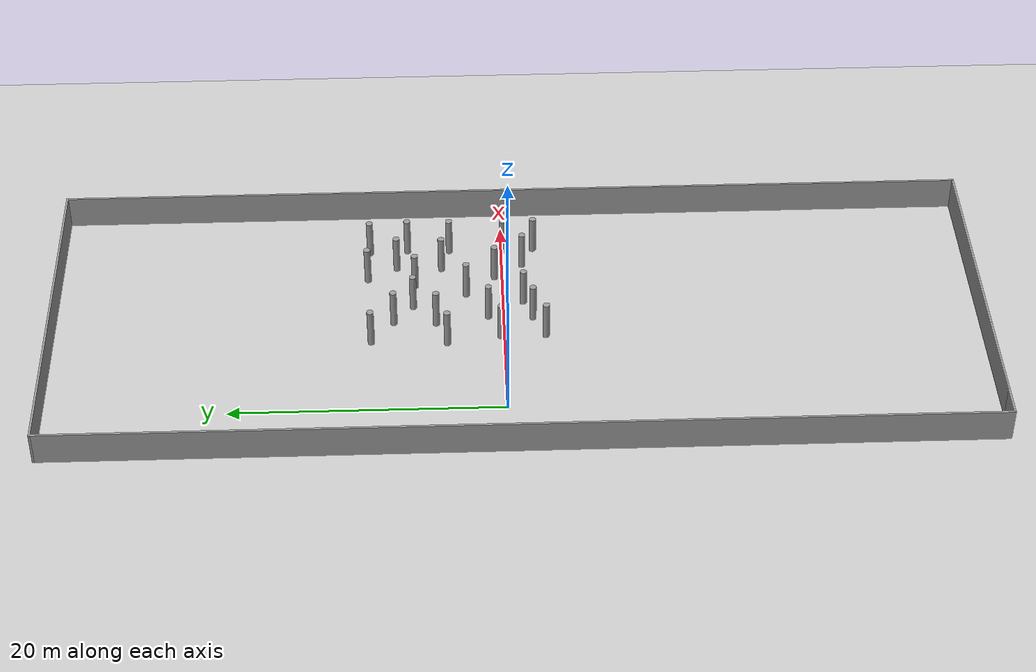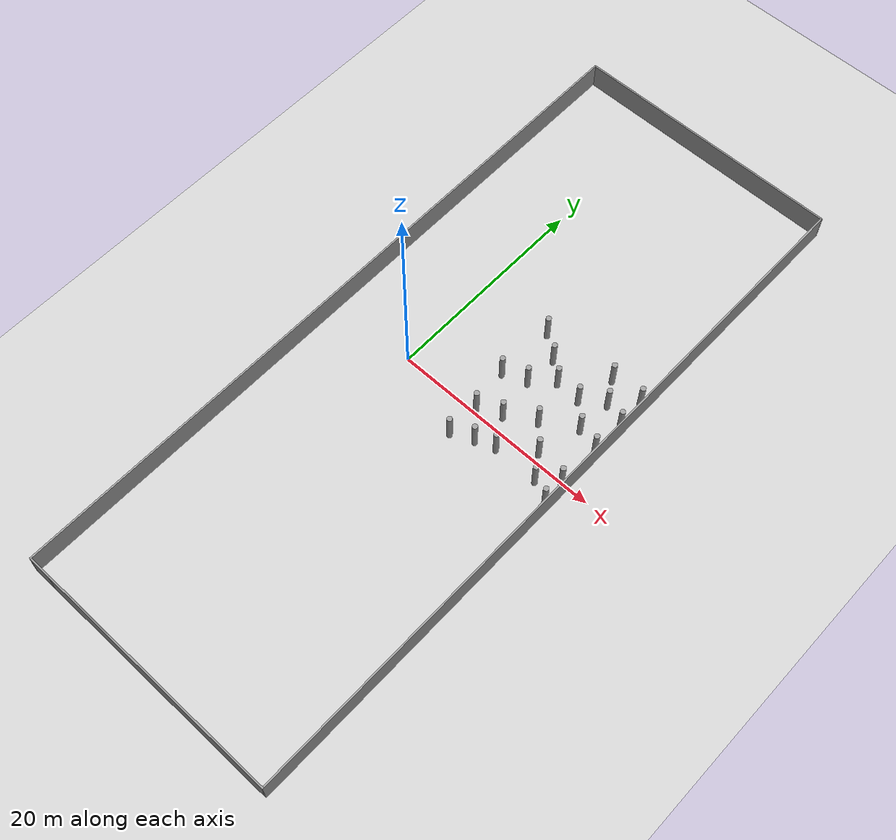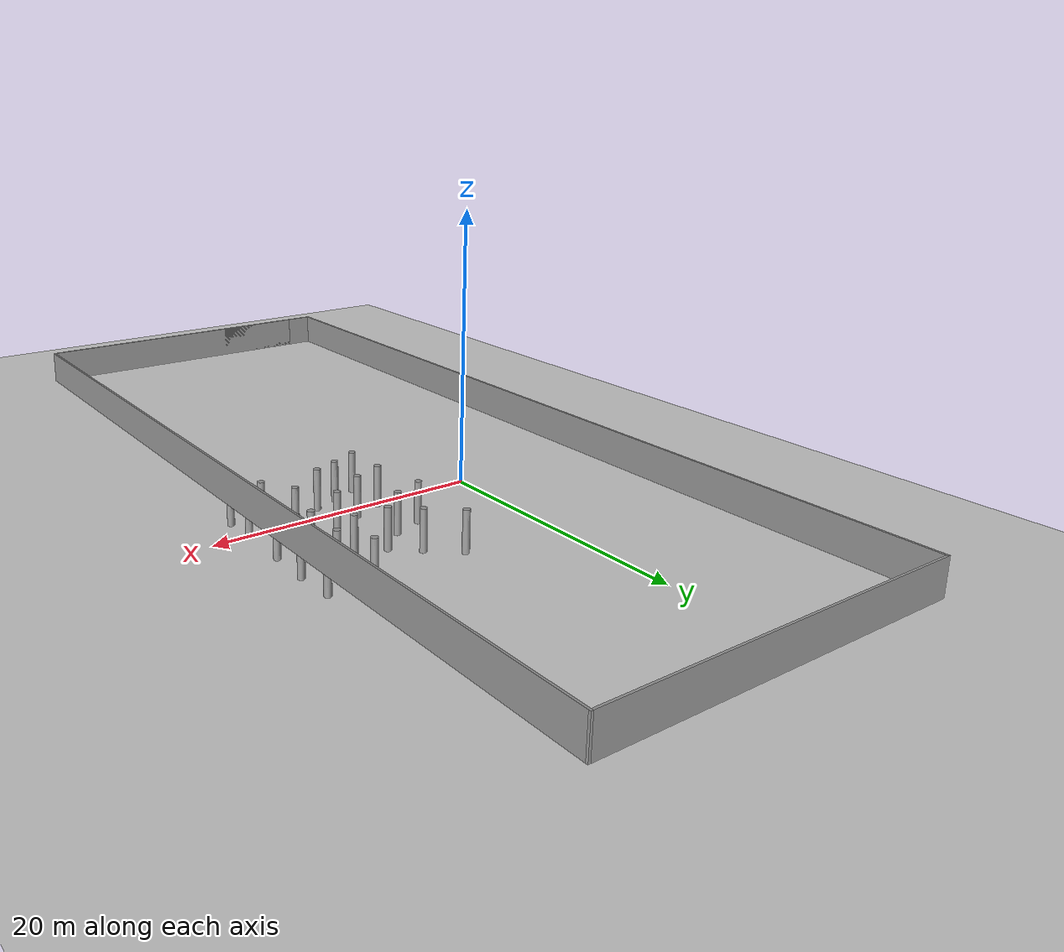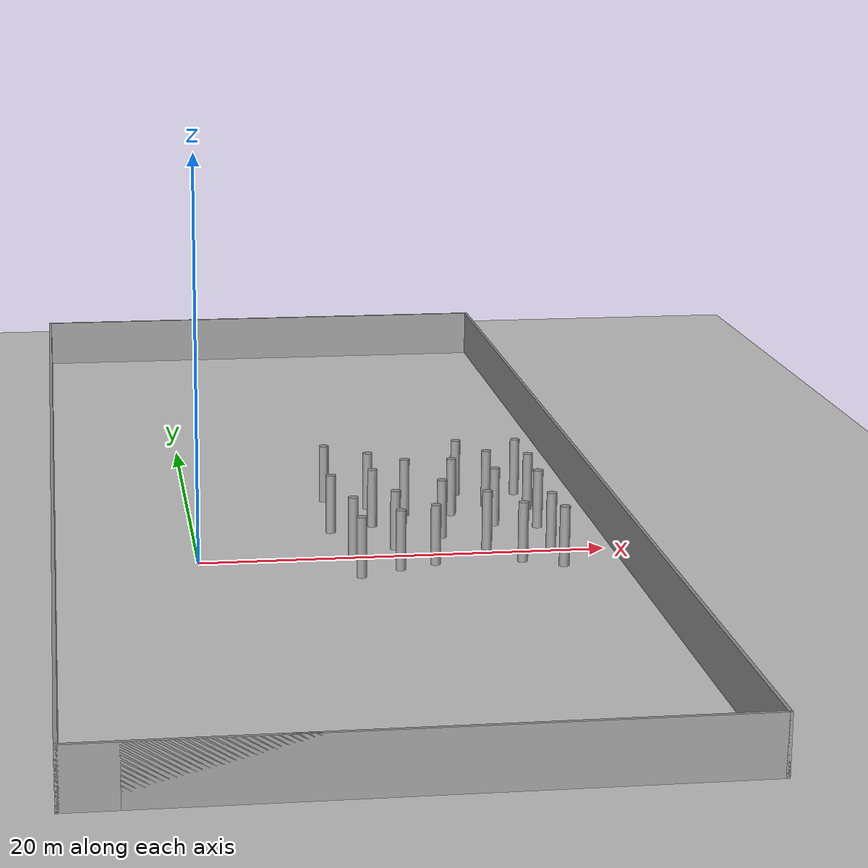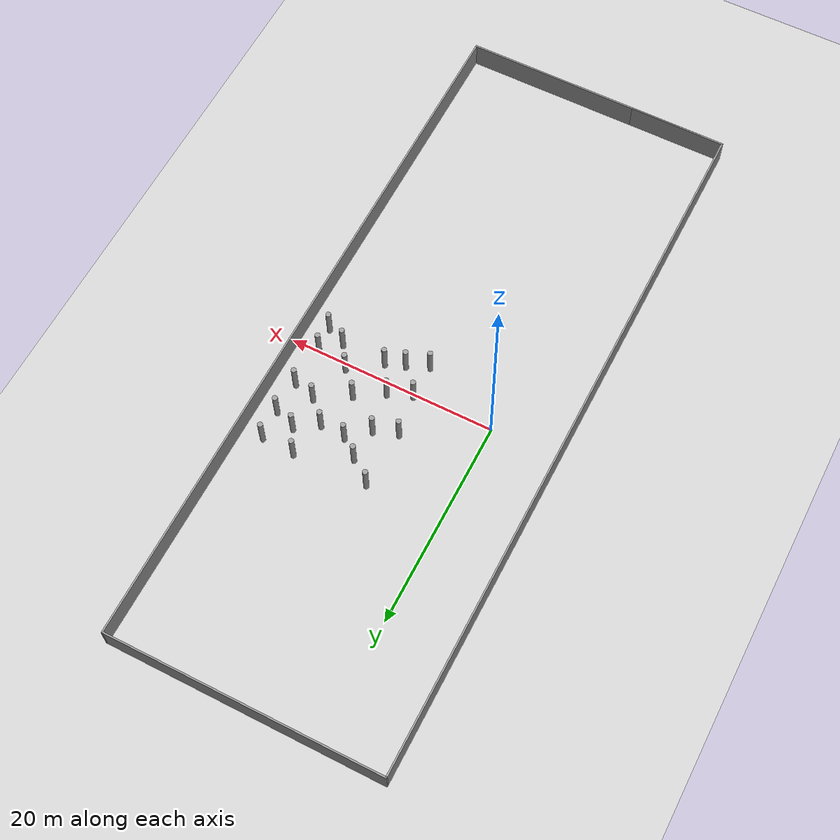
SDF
<sdf version="1.6">
 <world name="default">
  <model name="ground_plane">
   <static>1</static>
   <link name="link">
    <collision name="collision">
     <geometry><plane><normal>0 0 1</normal><size>100 100</size></plane></geometry>
     <surface><friction><ode><mu>100</mu><mu2>50</mu2></ode></friction></surface>
    </collision>
    <visual name="visual">
     <cast_shadows>0</cast_shadows>
     <geometry><plane><normal>0 0 1</normal><size>100 100</size></plane></geometry>
     <material>
      <script><uri>file://media/materials/scripts/gazebo.material</uri><name>Gazebo/Grey</name></script>
     </material>
    </visual>
   </link>
  </model>
  <model name="LjjForest_1">
   <link name="link_0">
    <inertial>
     <mass>1</mass>
     <inertia><ixx>0.145833</ixx><ixy>0</ixy><ixz>0</ixz><iyy>0.145833</iyy><iyz>0</iyz><izz>0.125</izz></inertia>
    </inertial>
    <pose>-5.02717 0.116957 0 0 -0 0</pose>
    <visual name="visual">
     <geometry><cylinder><radius>0.25</radius><length>3</length></cylinder></geometry>
     <material>
      <lighting>1</lighting>
      <script><uri>file://media/materials/scripts/gazebo.material</uri><name>Gazebo/Grey</name></script>
      <shader type="vertex"><normal_map>__default__</normal_map></shader>
      <ambient>0.3 0.3 0.3 1</ambient>
      <diffuse>0.7 0.7 0.7 1</diffuse>
      <specular>0.01 0.01 0.01 1</specular>
      <emissive>0 0 0 1</emissive>
     </material>
    </visual>
    <collision name="collision">
     <geometry><cylinder><radius>0.25</radius><length>3</length></cylinder></geometry>
     <surface>
      <friction>
       <ode><mu>1</mu><mu2>1</mu2><fdir1>0 0 0</fdir1><slip1>0</slip1><slip2>0</slip2></ode>
       <torsional>
        <coefficient>1</coefficient>
        <patch_radius>0</patch_radius>
        <surface_radius>0</surface_radius>
        <use_patch_radius>1</use_patch_radius>
        <ode><slip>0</slip></ode>
       </torsional>
      </friction>
      <bounce><restitution_coefficient>0</restitution_coefficient><threshold>1e+06</threshold></bounce>
      <contact>
       <collide_without_contact>0</collide_without_contact>
       <collide_without_contact_bitmask>1</collide_without_contact_bitmask>
       <collide_bitmask>1</collide_bitmask>
       <ode>
        <soft_cfm>0</soft_cfm>
        <soft_erp>0.2</soft_erp>
        <kp>1e+13</kp>
        <kd>1</kd>
        <max_vel>0.01</max_vel>
        <min_depth>0</min_depth>
       </ode>
       <bullet>
        <split_impulse>1</split_impulse>
        <split_impulse_penetration_threshold>-0.01</split_impulse_penetration_threshold>
        <soft_cfm>0</soft_cfm>
        <soft_erp>0.2</soft_erp>
        <kp>1e+13</kp>
        <kd>1</kd>
       </bullet>
      </contact>
     </surface>
    </collision>
   </link>
   <link name="link_0_clone">
    <inertial>
     <mass>1</mass>
     <inertia><ixx>0.145833</ixx><ixy>0</ixy><ixz>0</ixz><iyy>0.145833</iyy><iyz>0</iyz><izz>0.125</izz></inertia>
    </inertial>
    <pose>-2.83119 0.981911 0 0 -0 0</pose>
    <visual name="visual">
     <geometry><cylinder><radius>0.25</radius><length>3</length></cylinder></geometry>
     <material>
      <lighting>1</lighting>
      <script><uri>file://media/materials/scripts/gazebo.material</uri><name>Gazebo/Grey</name></script>
      <shader type="vertex"><normal_map>__default__</normal_map></shader>
      <ambient>0.3 0.3 0.3 1</ambient>
      <diffuse>0.7 0.7 0.7 1</diffuse>
      <specular>0.01 0.01 0.01 1</specular>
      <emissive>0 0 0 1</emissive>
     </material>
    </visual>
    <collision name="collision">
     <geometry><cylinder><radius>0.25</radius><length>3</length></cylinder></geometry>
     <surface>
      <friction>
       <ode><mu>1</mu><mu2>1</mu2><fdir1>0 0 0</fdir1><slip1>0</slip1><slip2>0</slip2></ode>
       <torsional>
        <coefficient>1</coefficient>
        <patch_radius>0</patch_radius>
        <surface_radius>0</surface_radius>
        <use_patch_radius>1</use_patch_radius>
        <ode><slip>0</slip></ode>
       </torsional>
      </friction>
      <bounce><restitution_coefficient>0</restitution_coefficient><threshold>1e+06</threshold></bounce>
      <contact>
       <collide_without_contact>0</collide_without_contact>
       <collide_without_contact_bitmask>1</collide_without_contact_bitmask>
       <collide_bitmask>1</collide_bitmask>
       <ode>
        <soft_cfm>0</soft_cfm>
        <soft_erp>0.2</soft_erp>
        <kp>1e+13</kp>
        <kd>1</kd>
        <max_vel>0.01</max_vel>
        <min_depth>0</min_depth>
       </ode>
       <bullet>
        <split_impulse>1</split_impulse>
        <split_impulse_penetration_threshold>-0.01</split_impulse_penetration_threshold>
        <soft_cfm>0</soft_cfm>
        <soft_erp>0.2</soft_erp>
        <kp>1e+13</kp>
        <kd>1</kd>
       </bullet>
      </contact>
     </surface>
    </collision>
   </link>
   <link name="link_0_clone_0">
    <inertial>
     <mass>1</mass>
     <inertia><ixx>0.145833</ixx><ixy>0</ixy><ixz>0</ixz><iyy>0.145833</iyy><iyz>0</iyz><izz>0.125</izz></inertia>
    </inertial>
    <pose>-0.25253 2.5682 0 0 -0 0</pose>
    <visual name="visual">
     <geometry><cylinder><radius>0.25</radius><length>3</length></cylinder></geometry>
     <material>
      <lighting>1</lighting>
      <script><uri>file://media/materials/scripts/gazebo.material</uri><name>Gazebo/Grey</name></script>
      <shader type="vertex"><normal_map>__default__</normal_map></shader>
      <ambient>0.3 0.3 0.3 1</ambient>
      <diffuse>0.7 0.7 0.7 1</diffuse>
      <specular>0.01 0.01 0.01 1</specular>
      <emissive>0 0 0 1</emissive>
     </material>
    </visual>
    <collision name="collision">
     <geometry><cylinder><radius>0.25</radius><length>3</length></cylinder></geometry>
     <surface>
      <friction>
       <ode><mu>1</mu><mu2>1</mu2><fdir1>0 0 0</fdir1><slip1>0</slip1><slip2>0</slip2></ode>
       <torsional>
        <coefficient>1</coefficient>
        <patch_radius>0</patch_radius>
        <surface_radius>0</surface_radius>
        <use_patch_radius>1</use_patch_radius>
        <ode><slip>0</slip></ode>
       </torsional>
      </friction>
      <bounce><restitution_coefficient>0</restitution_coefficient><threshold>1e+06</threshold></bounce>
      <contact>
       <collide_without_contact>0</collide_without_contact>
       <collide_without_contact_bitmask>1</collide_without_contact_bitmask>
       <collide_bitmask>1</collide_bitmask>
       <ode>
        <soft_cfm>0</soft_cfm>
        <soft_erp>0.2</soft_erp>
        <kp>1e+13</kp>
        <kd>1</kd>
        <max_vel>0.01</max_vel>
        <min_depth>0</min_depth>
       </ode>
       <bullet>
        <split_impulse>1</split_impulse>
        <split_impulse_penetration_threshold>-0.01</split_impulse_penetration_threshold>
        <soft_cfm>0</soft_cfm>
        <soft_erp>0.2</soft_erp>
        <kp>1e+13</kp>
        <kd>1</kd>
       </bullet>
      </contact>
     </surface>
    </collision>
   </link>
   <link name="link_0_clone_1">
    <inertial>
     <mass>1</mass>
     <inertia><ixx>0.145833</ixx><ixy>0</ixy><ixz>0</ixz><iyy>0.145833</iyy><iyz>0</iyz><izz>0.125</izz></inertia>
    </inertial>
    <pose>-1.2394 -1.64814 0 0 -0 0</pose>
    <visual name="visual">
     <geometry><cylinder><radius>0.25</radius><length>3</length></cylinder></geometry>
     <material>
      <lighting>1</lighting>
      <script><uri>file://media/materials/scripts/gazebo.material</uri><name>Gazebo/Grey</name></script>
      <shader type="vertex"><normal_map>__default__</normal_map></shader>
      <ambient>0.3 0.3 0.3 1</ambient>
      <diffuse>0.7 0.7 0.7 1</diffuse>
      <specular>0.01 0.01 0.01 1</specular>
      <emissive>0 0 0 1</emissive>
     </material>
    </visual>
    <collision name="collision">
     <geometry><cylinder><radius>0.25</radius><length>3</length></cylinder></geometry>
     <surface>
      <friction>
       <ode><mu>1</mu><mu2>1</mu2><fdir1>0 0 0</fdir1><slip1>0</slip1><slip2>0</slip2></ode>
       <torsional>
        <coefficient>1</coefficient>
        <patch_radius>0</patch_radius>
        <surface_radius>0</surface_radius>
        <use_patch_radius>1</use_patch_radius>
        <ode><slip>0</slip></ode>
       </torsional>
      </friction>
      <bounce><restitution_coefficient>0</restitution_coefficient><threshold>1e+06</threshold></bounce>
      <contact>
       <collide_without_contact>0</collide_without_contact>
       <collide_without_contact_bitmask>1</collide_without_contact_bitmask>
       <collide_bitmask>1</collide_bitmask>
       <ode>
        <soft_cfm>0</soft_cfm>
        <soft_erp>0.2</soft_erp>
        <kp>1e+13</kp>
        <kd>1</kd>
        <max_vel>0.01</max_vel>
        <min_depth>0</min_depth>
       </ode>
       <bullet>
        <split_impulse>1</split_impulse>
        <split_impulse_penetration_threshold>-0.01</split_impulse_penetration_threshold>
        <soft_cfm>0</soft_cfm>
        <soft_erp>0.2</soft_erp>
        <kp>1e+13</kp>
        <kd>1</kd>
       </bullet>
      </contact>
     </surface>
    </collision>
   </link>
   <link name="link_0_clone_15">
    <inertial>
     <mass>1</mass>
     <inertia><ixx>0.145833</ixx><ixy>0</ixy><ixz>0</ixz><iyy>0.145833</iyy><iyz>0</iyz><izz>0.125</izz></inertia>
    </inertial>
    <pose>-3.03254 -2.29236 0 0 -0 0</pose>
    <visual name="visual">
     <geometry><cylinder><radius>0.25</radius><length>3</length></cylinder></geometry>
     <material>
      <lighting>1</lighting>
      <script><uri>file://media/materials/scripts/gazebo.material</uri><name>Gazebo/Grey</name></script>
      <shader type="vertex"><normal_map>__default__</normal_map></shader>
      <ambient>0.3 0.3 0.3 1</ambient>
      <diffuse>0.7 0.7 0.7 1</diffuse>
      <specular>0.01 0.01 0.01 1</specular>
      <emissive>0 0 0 1</emissive>
     </material>
    </visual>
    <collision name="collision">
     <geometry><cylinder><radius>0.25</radius><length>3</length></cylinder></geometry>
     <surface>
      <friction>
       <ode><mu>1</mu><mu2>1</mu2><fdir1>0 0 0</fdir1><slip1>0</slip1><slip2>0</slip2></ode>
       <torsional>
        <coefficient>1</coefficient>
        <patch_radius>0</patch_radius>
        <surface_radius>0</surface_radius>
        <use_patch_radius>1</use_patch_radius>
        <ode><slip>0</slip></ode>
       </torsional>
      </friction>
      <bounce><restitution_coefficient>0</restitution_coefficient><threshold>1e+06</threshold></bounce>
      <contact>
       <collide_without_contact>0</collide_without_contact>
       <collide_without_contact_bitmask>1</collide_without_contact_bitmask>
       <collide_bitmask>1</collide_bitmask>
       <ode>
        <soft_cfm>0</soft_cfm>
        <soft_erp>0.2</soft_erp>
        <kp>1e+13</kp>
        <kd>1</kd>
        <max_vel>0.01</max_vel>
        <min_depth>0</min_depth>
       </ode>
       <bullet>
        <split_impulse>1</split_impulse>
        <split_impulse_penetration_threshold>-0.01</split_impulse_penetration_threshold>
        <soft_cfm>0</soft_cfm>
        <soft_erp>0.2</soft_erp>
        <kp>1e+13</kp>
        <kd>1</kd>
       </bullet>
      </contact>
     </surface>
    </collision>
   </link>
   <link name="link_0_clone_16">
    <inertial>
     <mass>1</mass>
     <inertia><ixx>0.145833</ixx><ixy>0</ixy><ixz>0</ixz><iyy>0.145833</iyy><iyz>0</iyz><izz>0.125</izz></inertia>
    </inertial>
    <pose>-5.04025 -3.1815 0 0 -0 0</pose>
    <visual name="visual">
     <geometry><cylinder><radius>0.25</radius><length>3</length></cylinder></geometry>
     <material>
      <lighting>1</lighting>
      <script><uri>file://media/materials/scripts/gazebo.material</uri><name>Gazebo/Grey</name></script>
      <shader type="vertex"><normal_map>__default__</normal_map></shader>
      <ambient>0.3 0.3 0.3 1</ambient>
      <diffuse>0.7 0.7 0.7 1</diffuse>
      <specular>0.01 0.01 0.01 1</specular>
      <emissive>0 0 0 1</emissive>
     </material>
    </visual>
    <collision name="collision">
     <geometry><cylinder><radius>0.25</radius><length>3</length></cylinder></geometry>
     <surface>
      <friction>
       <ode><mu>1</mu><mu2>1</mu2><fdir1>0 0 0</fdir1><slip1>0</slip1><slip2>0</slip2></ode>
       <torsional>
        <coefficient>1</coefficient>
        <patch_radius>0</patch_radius>
        <surface_radius>0</surface_radius>
        <use_patch_radius>1</use_patch_radius>
        <ode><slip>0</slip></ode>
       </torsional>
      </friction>
      <bounce><restitution_coefficient>0</restitution_coefficient><threshold>1e+06</threshold></bounce>
      <contact>
       <collide_without_contact>0</collide_without_contact>
       <collide_without_contact_bitmask>1</collide_without_contact_bitmask>
       <collide_bitmask>1</collide_bitmask>
       <ode>
        <soft_cfm>0</soft_cfm>
        <soft_erp>0.2</soft_erp>
        <kp>1e+13</kp>
        <kd>1</kd>
        <max_vel>0.01</max_vel>
        <min_depth>0</min_depth>
       </ode>
       <bullet>
        <split_impulse>1</split_impulse>
        <split_impulse_penetration_threshold>-0.01</split_impulse_penetration_threshold>
        <soft_cfm>0</soft_cfm>
        <soft_erp>0.2</soft_erp>
        <kp>1e+13</kp>
        <kd>1</kd>
       </bullet>
      </contact>
     </surface>
    </collision>
   </link>
   <link name="link_0_clone_2">
    <inertial>
     <mass>1</mass>
     <inertia><ixx>0.145833</ixx><ixy>0</ixy><ixz>0</ixz><iyy>0.145833</iyy><iyz>0</iyz><izz>0.125</izz></inertia>
    </inertial>
    <pose>1.64727 0.418921 0 0 -0 0</pose>
    <visual name="visual">
     <geometry><cylinder><radius>0.25</radius><length>3</length></cylinder></geometry>
     <material>
      <lighting>1</lighting>
      <script><uri>file://media/materials/scripts/gazebo.material</uri><name>Gazebo/Grey</name></script>
      <shader type="vertex"><normal_map>__default__</normal_map></shader>
      <ambient>0.3 0.3 0.3 1</ambient>
      <diffuse>0.7 0.7 0.7 1</diffuse>
      <specular>0.01 0.01 0.01 1</specular>
      <emissive>0 0 0 1</emissive>
     </material>
    </visual>
    <collision name="collision">
     <geometry><cylinder><radius>0.25</radius><length>3</length></cylinder></geometry>
     <surface>
      <friction>
       <ode><mu>1</mu><mu2>1</mu2><fdir1>0 0 0</fdir1><slip1>0</slip1><slip2>0</slip2></ode>
       <torsional>
        <coefficient>1</coefficient>
        <patch_radius>0</patch_radius>
        <surface_radius>0</surface_radius>
        <use_patch_radius>1</use_patch_radius>
        <ode><slip>0</slip></ode>
       </torsional>
      </friction>
      <bounce><restitution_coefficient>0</restitution_coefficient><threshold>1e+06</threshold></bounce>
      <contact>
       <collide_without_contact>0</collide_without_contact>
       <collide_without_contact_bitmask>1</collide_without_contact_bitmask>
       <collide_bitmask>1</collide_bitmask>
       <ode>
        <soft_cfm>0</soft_cfm>
        <soft_erp>0.2</soft_erp>
        <kp>1e+13</kp>
        <kd>1</kd>
        <max_vel>0.01</max_vel>
        <min_depth>0</min_depth>
       </ode>
       <bullet>
        <split_impulse>1</split_impulse>
        <split_impulse_penetration_threshold>-0.01</split_impulse_penetration_threshold>
        <soft_cfm>0</soft_cfm>
        <soft_erp>0.2</soft_erp>
        <kp>1e+13</kp>
        <kd>1</kd>
       </bullet>
      </contact>
     </surface>
    </collision>
   </link>
   <link name="link_0_clone_23">
    <inertial>
     <mass>1</mass>
     <inertia><ixx>0.145833</ixx><ixy>0</ixy><ixz>0</ixz><iyy>0.145833</iyy><iyz>0</iyz><izz>0.125</izz></inertia>
    </inertial>
    <pose>-5.66615 4.05911 0 0 -0 0</pose>
    <visual name="visual">
     <geometry><cylinder><radius>0.25</radius><length>3</length></cylinder></geometry>
     <material>
      <lighting>1</lighting>
      <script><uri>file://media/materials/scripts/gazebo.material</uri><name>Gazebo/Grey</name></script>
      <shader type="vertex"><normal_map>__default__</normal_map></shader>
      <ambient>0.3 0.3 0.3 1</ambient>
      <diffuse>0.7 0.7 0.7 1</diffuse>
      <specular>0.01 0.01 0.01 1</specular>
      <emissive>0 0 0 1</emissive>
     </material>
    </visual>
    <collision name="collision">
     <geometry><cylinder><radius>0.25</radius><length>3</length></cylinder></geometry>
     <surface>
      <friction>
       <ode><mu>1</mu><mu2>1</mu2><fdir1>0 0 0</fdir1><slip1>0</slip1><slip2>0</slip2></ode>
       <torsional>
        <coefficient>1</coefficient>
        <patch_radius>0</patch_radius>
        <surface_radius>0</surface_radius>
        <use_patch_radius>1</use_patch_radius>
        <ode><slip>0</slip></ode>
       </torsional>
      </friction>
      <bounce><restitution_coefficient>0</restitution_coefficient><threshold>1e+06</threshold></bounce>
      <contact>
       <collide_without_contact>0</collide_without_contact>
       <collide_without_contact_bitmask>1</collide_without_contact_bitmask>
       <collide_bitmask>1</collide_bitmask>
       <ode>
        <soft_cfm>0</soft_cfm>
        <soft_erp>0.2</soft_erp>
        <kp>1e+13</kp>
        <kd>1</kd>
        <max_vel>0.01</max_vel>
        <min_depth>0</min_depth>
       </ode>
       <bullet>
        <split_impulse>1</split_impulse>
        <split_impulse_penetration_threshold>-0.01</split_impulse_penetration_threshold>
        <soft_cfm>0</soft_cfm>
        <soft_erp>0.2</soft_erp>
        <kp>1e+13</kp>
        <kd>1</kd>
       </bullet>
      </contact>
     </surface>
    </collision>
   </link>
   <link name="link_0_clone_24">
    <inertial>
     <mass>1</mass>
     <inertia><ixx>0.145833</ixx><ixy>0</ixy><ixz>0</ixz><iyy>0.145833</iyy><iyz>0</iyz><izz>0.125</izz></inertia>
    </inertial>
    <pose>2.92874 7.75131 0 0 -0 0</pose>
    <visual name="visual">
     <geometry><cylinder><radius>0.25</radius><length>3</length></cylinder></geometry>
     <material>
      <lighting>1</lighting>
      <script><uri>file://media/materials/scripts/gazebo.material</uri><name>Gazebo/Grey</name></script>
      <shader type="vertex"><normal_map>__default__</normal_map></shader>
      <ambient>0.3 0.3 0.3 1</ambient>
      <diffuse>0.7 0.7 0.7 1</diffuse>
      <specular>0.01 0.01 0.01 1</specular>
      <emissive>0 0 0 1</emissive>
     </material>
    </visual>
    <collision name="collision">
     <geometry><cylinder><radius>0.25</radius><length>3</length></cylinder></geometry>
     <surface>
      <friction>
       <ode><mu>1</mu><mu2>1</mu2><fdir1>0 0 0</fdir1><slip1>0</slip1><slip2>0</slip2></ode>
       <torsional>
        <coefficient>1</coefficient>
        <patch_radius>0</patch_radius>
        <surface_radius>0</surface_radius>
        <use_patch_radius>1</use_patch_radius>
        <ode><slip>0</slip></ode>
       </torsional>
      </friction>
      <bounce><restitution_coefficient>0</restitution_coefficient><threshold>1e+06</threshold></bounce>
      <contact>
       <collide_without_contact>0</collide_without_contact>
       <collide_without_contact_bitmask>1</collide_without_contact_bitmask>
       <collide_bitmask>1</collide_bitmask>
       <ode>
        <soft_cfm>0</soft_cfm>
        <soft_erp>0.2</soft_erp>
        <kp>1e+13</kp>
        <kd>1</kd>
        <max_vel>0.01</max_vel>
        <min_depth>0</min_depth>
       </ode>
       <bullet>
        <split_impulse>1</split_impulse>
        <split_impulse_penetration_threshold>-0.01</split_impulse_penetration_threshold>
        <soft_cfm>0</soft_cfm>
        <soft_erp>0.2</soft_erp>
        <kp>1e+13</kp>
        <kd>1</kd>
       </bullet>
      </contact>
     </surface>
    </collision>
   </link>
   <link name="link_0_clone_25">
    <inertial>
     <mass>1</mass>
     <inertia><ixx>0.145833</ixx><ixy>0</ixy><ixz>0</ixz><iyy>0.145833</iyy><iyz>0</iyz><izz>0.125</izz></inertia>
    </inertial>
    <pose>4.82479 9.76951 0 0 -0 0</pose>
    <visual name="visual">
     <geometry><cylinder><radius>0.25</radius><length>3</length></cylinder></geometry>
     <material>
      <lighting>1</lighting>
      <script><uri>file://media/materials/scripts/gazebo.material</uri><name>Gazebo/Grey</name></script>
      <shader type="vertex"><normal_map>__default__</normal_map></shader>
      <ambient>0.3 0.3 0.3 1</ambient>
      <diffuse>0.7 0.7 0.7 1</diffuse>
      <specular>0.01 0.01 0.01 1</specular>
      <emissive>0 0 0 1</emissive>
     </material>
    </visual>
    <collision name="collision">
     <geometry><cylinder><radius>0.25</radius><length>3</length></cylinder></geometry>
     <surface>
      <friction>
       <ode><mu>1</mu><mu2>1</mu2><fdir1>0 0 0</fdir1><slip1>0</slip1><slip2>0</slip2></ode>
       <torsional>
        <coefficient>1</coefficient>
        <patch_radius>0</patch_radius>
        <surface_radius>0</surface_radius>
        <use_patch_radius>1</use_patch_radius>
        <ode><slip>0</slip></ode>
       </torsional>
      </friction>
      <bounce><restitution_coefficient>0</restitution_coefficient><threshold>1e+06</threshold></bounce>
      <contact>
       <collide_without_contact>0</collide_without_contact>
       <collide_without_contact_bitmask>1</collide_without_contact_bitmask>
       <collide_bitmask>1</collide_bitmask>
       <ode>
        <soft_cfm>0</soft_cfm>
        <soft_erp>0.2</soft_erp>
        <kp>1e+13</kp>
        <kd>1</kd>
        <max_vel>0.01</max_vel>
        <min_depth>0</min_depth>
       </ode>
       <bullet>
        <split_impulse>1</split_impulse>
        <split_impulse_penetration_threshold>-0.01</split_impulse_penetration_threshold>
        <soft_cfm>0</soft_cfm>
        <soft_erp>0.2</soft_erp>
        <kp>1e+13</kp>
        <kd>1</kd>
       </bullet>
      </contact>
     </surface>
    </collision>
   </link>
   <link name="link_0_clone_26">
    <inertial>
     <mass>1</mass>
     <inertia><ixx>0.145833</ixx><ixy>0</ixy><ixz>0</ixz><iyy>0.145833</iyy><iyz>0</iyz><izz>0.125</izz></inertia>
    </inertial>
    <pose>1.66794 9.91533 0 0 -0 0</pose>
    <visual name="visual">
     <geometry><cylinder><radius>0.25</radius><length>3</length></cylinder></geometry>
     <material>
      <lighting>1</lighting>
      <script><uri>file://media/materials/scripts/gazebo.material</uri><name>Gazebo/Grey</name></script>
      <shader type="vertex"><normal_map>__default__</normal_map></shader>
      <ambient>0.3 0.3 0.3 1</ambient>
      <diffuse>0.7 0.7 0.7 1</diffuse>
      <specular>0.01 0.01 0.01 1</specular>
      <emissive>0 0 0 1</emissive>
     </material>
    </visual>
    <collision name="collision">
     <geometry><cylinder><radius>0.25</radius><length>3</length></cylinder></geometry>
     <surface>
      <friction>
       <ode><mu>1</mu><mu2>1</mu2><fdir1>0 0 0</fdir1><slip1>0</slip1><slip2>0</slip2></ode>
       <torsional>
        <coefficient>1</coefficient>
        <patch_radius>0</patch_radius>
        <surface_radius>0</surface_radius>
        <use_patch_radius>1</use_patch_radius>
        <ode><slip>0</slip></ode>
       </torsional>
      </friction>
      <bounce><restitution_coefficient>0</restitution_coefficient><threshold>1e+06</threshold></bounce>
      <contact>
       <collide_without_contact>0</collide_without_contact>
       <collide_without_contact_bitmask>1</collide_without_contact_bitmask>
       <collide_bitmask>1</collide_bitmask>
       <ode>
        <soft_cfm>0</soft_cfm>
        <soft_erp>0.2</soft_erp>
        <kp>1e+13</kp>
        <kd>1</kd>
        <max_vel>0.01</max_vel>
        <min_depth>0</min_depth>
       </ode>
       <bullet>
        <split_impulse>1</split_impulse>
        <split_impulse_penetration_threshold>-0.01</split_impulse_penetration_threshold>
        <soft_cfm>0</soft_cfm>
        <soft_erp>0.2</soft_erp>
        <kp>1e+13</kp>
        <kd>1</kd>
       </bullet>
      </contact>
     </surface>
    </collision>
   </link>
   <link name="link_0_clone_28">
    <inertial>
     <mass>1</mass>
     <inertia><ixx>0.145833</ixx><ixy>0</ixy><ixz>0</ixz><iyy>0.145833</iyy><iyz>0</iyz><izz>0.125</izz></inertia>
    </inertial>
    <pose>-3.28832 7.97521 0 0 -0 0</pose>
    <visual name="visual">
     <geometry><cylinder><radius>0.25</radius><length>3</length></cylinder></geometry>
     <material>
      <lighting>1</lighting>
      <script><uri>file://media/materials/scripts/gazebo.material</uri><name>Gazebo/Grey</name></script>
      <shader type="vertex"><normal_map>__default__</normal_map></shader>
      <ambient>0.3 0.3 0.3 1</ambient>
      <diffuse>0.7 0.7 0.7 1</diffuse>
      <specular>0.01 0.01 0.01 1</specular>
      <emissive>0 0 0 1</emissive>
     </material>
    </visual>
    <collision name="collision">
     <geometry><cylinder><radius>0.25</radius><length>3</length></cylinder></geometry>
     <surface>
      <friction>
       <ode><mu>1</mu><mu2>1</mu2><fdir1>0 0 0</fdir1><slip1>0</slip1><slip2>0</slip2></ode>
       <torsional>
        <coefficient>1</coefficient>
        <patch_radius>0</patch_radius>
        <surface_radius>0</surface_radius>
        <use_patch_radius>1</use_patch_radius>
        <ode><slip>0</slip></ode>
       </torsional>
      </friction>
      <bounce><restitution_coefficient>0</restitution_coefficient><threshold>1e+06</threshold></bounce>
      <contact>
       <collide_without_contact>0</collide_without_contact>
       <collide_without_contact_bitmask>1</collide_without_contact_bitmask>
       <collide_bitmask>1</collide_bitmask>
       <ode>
        <soft_cfm>0</soft_cfm>
        <soft_erp>0.2</soft_erp>
        <kp>1e+13</kp>
        <kd>1</kd>
        <max_vel>0.01</max_vel>
        <min_depth>0</min_depth>
       </ode>
       <bullet>
        <split_impulse>1</split_impulse>
        <split_impulse_penetration_threshold>-0.01</split_impulse_penetration_threshold>
        <soft_cfm>0</soft_cfm>
        <soft_erp>0.2</soft_erp>
        <kp>1e+13</kp>
        <kd>1</kd>
       </bullet>
      </contact>
     </surface>
    </collision>
   </link>
   <link name="link_0_clone_29">
    <inertial>
     <mass>1</mass>
     <inertia><ixx>0.145833</ixx><ixy>0</ixy><ixz>0</ixz><iyy>0.145833</iyy><iyz>0</iyz><izz>0.125</izz></inertia>
    </inertial>
    <pose>-5.38645 9.63545 0 0 -0 0</pose>
    <visual name="visual">
     <geometry><cylinder><radius>0.25</radius><length>3</length></cylinder></geometry>
     <material>
      <lighting>1</lighting>
      <script><uri>file://media/materials/scripts/gazebo.material</uri><name>Gazebo/Grey</name></script>
      <shader type="vertex"><normal_map>__default__</normal_map></shader>
      <ambient>0.3 0.3 0.3 1</ambient>
      <diffuse>0.7 0.7 0.7 1</diffuse>
      <specular>0.01 0.01 0.01 1</specular>
      <emissive>0 0 0 1</emissive>
     </material>
    </visual>
    <collision name="collision">
     <geometry><cylinder><radius>0.25</radius><length>3</length></cylinder></geometry>
     <surface>
      <friction>
       <ode><mu>1</mu><mu2>1</mu2><fdir1>0 0 0</fdir1><slip1>0</slip1><slip2>0</slip2></ode>
       <torsional>
        <coefficient>1</coefficient>
        <patch_radius>0</patch_radius>
        <surface_radius>0</surface_radius>
        <use_patch_radius>1</use_patch_radius>
        <ode><slip>0</slip></ode>
       </torsional>
      </friction>
      <bounce><restitution_coefficient>0</restitution_coefficient><threshold>1e+06</threshold></bounce>
      <contact>
       <collide_without_contact>0</collide_without_contact>
       <collide_without_contact_bitmask>1</collide_without_contact_bitmask>
       <collide_bitmask>1</collide_bitmask>
       <ode>
        <soft_cfm>0</soft_cfm>
        <soft_erp>0.2</soft_erp>
        <kp>1e+13</kp>
        <kd>1</kd>
        <max_vel>0.01</max_vel>
        <min_depth>0</min_depth>
       </ode>
       <bullet>
        <split_impulse>1</split_impulse>
        <split_impulse_penetration_threshold>-0.01</split_impulse_penetration_threshold>
        <soft_cfm>0</soft_cfm>
        <soft_erp>0.2</soft_erp>
        <kp>1e+13</kp>
        <kd>1</kd>
       </bullet>
      </contact>
     </surface>
    </collision>
   </link>
   <link name="link_0_clone_3">
    <inertial>
     <mass>1</mass>
     <inertia><ixx>0.145833</ixx><ixy>0</ixy><ixz>0</ixz><iyy>0.145833</iyy><iyz>0</iyz><izz>0.125</izz></inertia>
    </inertial>
    <pose>2.76214 4.38882 0 0 -0 0</pose>
    <visual name="visual">
     <geometry><cylinder><radius>0.25</radius><length>3</length></cylinder></geometry>
     <material>
      <lighting>1</lighting>
      <script><uri>file://media/materials/scripts/gazebo.material</uri><name>Gazebo/Grey</name></script>
      <shader type="vertex"><normal_map>__default__</normal_map></shader>
      <ambient>0.3 0.3 0.3 1</ambient>
      <diffuse>0.7 0.7 0.7 1</diffuse>
      <specular>0.01 0.01 0.01 1</specular>
      <emissive>0 0 0 1</emissive>
     </material>
    </visual>
    <collision name="collision">
     <geometry><cylinder><radius>0.25</radius><length>3</length></cylinder></geometry>
     <surface>
      <friction>
       <ode><mu>1</mu><mu2>1</mu2><fdir1>0 0 0</fdir1><slip1>0</slip1><slip2>0</slip2></ode>
       <torsional>
        <coefficient>1</coefficient>
        <patch_radius>0</patch_radius>
        <surface_radius>0</surface_radius>
        <use_patch_radius>1</use_patch_radius>
        <ode><slip>0</slip></ode>
       </torsional>
      </friction>
      <bounce><restitution_coefficient>0</restitution_coefficient><threshold>1e+06</threshold></bounce>
      <contact>
       <collide_without_contact>0</collide_without_contact>
       <collide_without_contact_bitmask>1</collide_without_contact_bitmask>
       <collide_bitmask>1</collide_bitmask>
       <ode>
        <soft_cfm>0</soft_cfm>
        <soft_erp>0.2</soft_erp>
        <kp>1e+13</kp>
        <kd>1</kd>
        <max_vel>0.01</max_vel>
        <min_depth>0</min_depth>
       </ode>
       <bullet>
        <split_impulse>1</split_impulse>
        <split_impulse_penetration_threshold>-0.01</split_impulse_penetration_threshold>
        <soft_cfm>0</soft_cfm>
        <soft_erp>0.2</soft_erp>
        <kp>1e+13</kp>
        <kd>1</kd>
       </bullet>
      </contact>
     </surface>
    </collision>
   </link>
   <link name="link_0_clone_30">
    <inertial>
     <mass>1</mass>
     <inertia><ixx>0.145833</ixx><ixy>0</ixy><ixz>0</ixz><iyy>0.145833</iyy><iyz>0</iyz><izz>0.125</izz></inertia>
    </inertial>
    <pose>4.96935 6.93626 0 0 -0 0</pose>
    <visual name="visual">
     <geometry><cylinder><radius>0.25</radius><length>3</length></cylinder></geometry>
     <material>
      <lighting>1</lighting>
      <script><uri>file://media/materials/scripts/gazebo.material</uri><name>Gazebo/Grey</name></script>
      <shader type="vertex"><normal_map>__default__</normal_map></shader>
      <ambient>0.3 0.3 0.3 1</ambient>
      <diffuse>0.7 0.7 0.7 1</diffuse>
      <specular>0.01 0.01 0.01 1</specular>
      <emissive>0 0 0 1</emissive>
     </material>
    </visual>
    <collision name="collision">
     <geometry><cylinder><radius>0.25</radius><length>3</length></cylinder></geometry>
     <surface>
      <friction>
       <ode><mu>1</mu><mu2>1</mu2><fdir1>0 0 0</fdir1><slip1>0</slip1><slip2>0</slip2></ode>
       <torsional>
        <coefficient>1</coefficient>
        <patch_radius>0</patch_radius>
        <surface_radius>0</surface_radius>
        <use_patch_radius>1</use_patch_radius>
        <ode><slip>0</slip></ode>
       </torsional>
      </friction>
      <bounce><restitution_coefficient>0</restitution_coefficient><threshold>1e+06</threshold></bounce>
      <contact>
       <collide_without_contact>0</collide_without_contact>
       <collide_without_contact_bitmask>1</collide_without_contact_bitmask>
       <collide_bitmask>1</collide_bitmask>
       <ode>
        <soft_cfm>0</soft_cfm>
        <soft_erp>0.2</soft_erp>
        <kp>1e+13</kp>
        <kd>1</kd>
        <max_vel>0.01</max_vel>
        <min_depth>0</min_depth>
       </ode>
       <bullet>
        <split_impulse>1</split_impulse>
        <split_impulse_penetration_threshold>-0.01</split_impulse_penetration_threshold>
        <soft_cfm>0</soft_cfm>
        <soft_erp>0.2</soft_erp>
        <kp>1e+13</kp>
        <kd>1</kd>
       </bullet>
      </contact>
     </surface>
    </collision>
   </link>
   <link name="link_0_clone_31">
    <inertial>
     <mass>1</mass>
     <inertia><ixx>0.145833</ixx><ixy>0</ixy><ixz>0</ixz><iyy>0.145833</iyy><iyz>0</iyz><izz>0.125</izz></inertia>
    </inertial>
    <pose>4.87388 3.77106 0 0 -0 0</pose>
    <visual name="visual">
     <geometry><cylinder><radius>0.25</radius><length>3</length></cylinder></geometry>
     <material>
      <lighting>1</lighting>
      <script><uri>file://media/materials/scripts/gazebo.material</uri><name>Gazebo/Grey</name></script>
      <shader type="vertex"><normal_map>__default__</normal_map></shader>
      <ambient>0.3 0.3 0.3 1</ambient>
      <diffuse>0.7 0.7 0.7 1</diffuse>
      <specular>0.01 0.01 0.01 1</specular>
      <emissive>0 0 0 1</emissive>
     </material>
    </visual>
    <collision name="collision">
     <geometry><cylinder><radius>0.25</radius><length>3</length></cylinder></geometry>
     <surface>
      <friction>
       <ode><mu>1</mu><mu2>1</mu2><fdir1>0 0 0</fdir1><slip1>0</slip1><slip2>0</slip2></ode>
       <torsional>
        <coefficient>1</coefficient>
        <patch_radius>0</patch_radius>
        <surface_radius>0</surface_radius>
        <use_patch_radius>1</use_patch_radius>
        <ode><slip>0</slip></ode>
       </torsional>
      </friction>
      <bounce><restitution_coefficient>0</restitution_coefficient><threshold>1e+06</threshold></bounce>
      <contact>
       <collide_without_contact>0</collide_without_contact>
       <collide_without_contact_bitmask>1</collide_without_contact_bitmask>
       <collide_bitmask>1</collide_bitmask>
       <ode>
        <soft_cfm>0</soft_cfm>
        <soft_erp>0.2</soft_erp>
        <kp>1e+13</kp>
        <kd>1</kd>
        <max_vel>0.01</max_vel>
        <min_depth>0</min_depth>
       </ode>
       <bullet>
        <split_impulse>1</split_impulse>
        <split_impulse_penetration_threshold>-0.01</split_impulse_penetration_threshold>
        <soft_cfm>0</soft_cfm>
        <soft_erp>0.2</soft_erp>
        <kp>1e+13</kp>
        <kd>1</kd>
       </bullet>
      </contact>
     </surface>
    </collision>
   </link>
   <link name="link_0_clone_32">
    <inertial>
     <mass>1</mass>
     <inertia><ixx>0.145833</ixx><ixy>0</ixy><ixz>0</ixz><iyy>0.145833</iyy><iyz>0</iyz><izz>0.125</izz></inertia>
    </inertial>
    <pose>3.04344 -1.68403 0 0 -0 0</pose>
    <visual name="visual">
     <geometry><cylinder><radius>0.25</radius><length>3</length></cylinder></geometry>
     <material>
      <lighting>1</lighting>
      <script><uri>file://media/materials/scripts/gazebo.material</uri><name>Gazebo/Grey</name></script>
      <shader type="vertex"><normal_map>__default__</normal_map></shader>
      <ambient>0.3 0.3 0.3 1</ambient>
      <diffuse>0.7 0.7 0.7 1</diffuse>
      <specular>0.01 0.01 0.01 1</specular>
      <emissive>0 0 0 1</emissive>
     </material>
    </visual>
    <collision name="collision">
     <geometry><cylinder><radius>0.25</radius><length>3</length></cylinder></geometry>
     <surface>
      <friction>
       <ode><mu>1</mu><mu2>1</mu2><fdir1>0 0 0</fdir1><slip1>0</slip1><slip2>0</slip2></ode>
       <torsional>
        <coefficient>1</coefficient>
        <patch_radius>0</patch_radius>
        <surface_radius>0</surface_radius>
        <use_patch_radius>1</use_patch_radius>
        <ode><slip>0</slip></ode>
       </torsional>
      </friction>
      <bounce><restitution_coefficient>0</restitution_coefficient><threshold>1e+06</threshold></bounce>
      <contact>
       <collide_without_contact>0</collide_without_contact>
       <collide_without_contact_bitmask>1</collide_without_contact_bitmask>
       <collide_bitmask>1</collide_bitmask>
       <ode>
        <soft_cfm>0</soft_cfm>
        <soft_erp>0.2</soft_erp>
        <kp>1e+13</kp>
        <kd>1</kd>
        <max_vel>0.01</max_vel>
        <min_depth>0</min_depth>
       </ode>
       <bullet>
        <split_impulse>1</split_impulse>
        <split_impulse_penetration_threshold>-0.01</split_impulse_penetration_threshold>
        <soft_cfm>0</soft_cfm>
        <soft_erp>0.2</soft_erp>
        <kp>1e+13</kp>
        <kd>1</kd>
       </bullet>
      </contact>
     </surface>
    </collision>
   </link>
   <link name="link_0_clone_4">
    <inertial>
     <mass>1</mass>
     <inertia><ixx>0.145833</ixx><ixy>0</ixy><ixz>0</ixz><iyy>0.145833</iyy><iyz>0</iyz><izz>0.125</izz></inertia>
    </inertial>
    <pose>0.858928 6.3824 0 0 -0 0</pose>
    <visual name="visual">
     <geometry><cylinder><radius>0.25</radius><length>3</length></cylinder></geometry>
     <material>
      <lighting>1</lighting>
      <script><uri>file://media/materials/scripts/gazebo.material</uri><name>Gazebo/Grey</name></script>
      <shader type="vertex"><normal_map>__default__</normal_map></shader>
      <ambient>0.3 0.3 0.3 1</ambient>
      <diffuse>0.7 0.7 0.7 1</diffuse>
      <specular>0.01 0.01 0.01 1</specular>
      <emissive>0 0 0 1</emissive>
     </material>
    </visual>
    <collision name="collision">
     <geometry><cylinder><radius>0.25</radius><length>3</length></cylinder></geometry>
     <surface>
      <friction>
       <ode><mu>1</mu><mu2>1</mu2><fdir1>0 0 0</fdir1><slip1>0</slip1><slip2>0</slip2></ode>
       <torsional>
        <coefficient>1</coefficient>
        <patch_radius>0</patch_radius>
        <surface_radius>0</surface_radius>
        <use_patch_radius>1</use_patch_radius>
        <ode><slip>0</slip></ode>
       </torsional>
      </friction>
      <bounce><restitution_coefficient>0</restitution_coefficient><threshold>1e+06</threshold></bounce>
      <contact>
       <collide_without_contact>0</collide_without_contact>
       <collide_without_contact_bitmask>1</collide_without_contact_bitmask>
       <collide_bitmask>1</collide_bitmask>
       <ode>
        <soft_cfm>0</soft_cfm>
        <soft_erp>0.2</soft_erp>
        <kp>1e+13</kp>
        <kd>1</kd>
        <max_vel>0.01</max_vel>
        <min_depth>0</min_depth>
       </ode>
       <bullet>
        <split_impulse>1</split_impulse>
        <split_impulse_penetration_threshold>-0.01</split_impulse_penetration_threshold>
        <soft_cfm>0</soft_cfm>
        <soft_erp>0.2</soft_erp>
        <kp>1e+13</kp>
        <kd>1</kd>
       </bullet>
      </contact>
     </surface>
    </collision>
   </link>
   <link name="link_0_clone_5">
    <inertial>
     <mass>1</mass>
     <inertia><ixx>0.145833</ixx><ixy>0</ixy><ixz>0</ixz><iyy>0.145833</iyy><iyz>0</iyz><izz>0.125</izz></inertia>
    </inertial>
    <pose>-1.56065 6.53618 0 0 -0 0</pose>
    <visual name="visual">
     <geometry><cylinder><radius>0.25</radius><length>3</length></cylinder></geometry>
     <material>
      <lighting>1</lighting>
      <script><uri>file://media/materials/scripts/gazebo.material</uri><name>Gazebo/Grey</name></script>
      <shader type="vertex"><normal_map>__default__</normal_map></shader>
      <ambient>0.3 0.3 0.3 1</ambient>
      <diffuse>0.7 0.7 0.7 1</diffuse>
      <specular>0.01 0.01 0.01 1</specular>
      <emissive>0 0 0 1</emissive>
     </material>
    </visual>
    <collision name="collision">
     <geometry><cylinder><radius>0.25</radius><length>3</length></cylinder></geometry>
     <surface>
      <friction>
       <ode><mu>1</mu><mu2>1</mu2><fdir1>0 0 0</fdir1><slip1>0</slip1><slip2>0</slip2></ode>
       <torsional>
        <coefficient>1</coefficient>
        <patch_radius>0</patch_radius>
        <surface_radius>0</surface_radius>
        <use_patch_radius>1</use_patch_radius>
        <ode><slip>0</slip></ode>
       </torsional>
      </friction>
      <bounce><restitution_coefficient>0</restitution_coefficient><threshold>1e+06</threshold></bounce>
      <contact>
       <collide_without_contact>0</collide_without_contact>
       <collide_without_contact_bitmask>1</collide_without_contact_bitmask>
       <collide_bitmask>1</collide_bitmask>
       <ode>
        <soft_cfm>0</soft_cfm>
        <soft_erp>0.2</soft_erp>
        <kp>1e+13</kp>
        <kd>1</kd>
        <max_vel>0.01</max_vel>
        <min_depth>0</min_depth>
       </ode>
       <bullet>
        <split_impulse>1</split_impulse>
        <split_impulse_penetration_threshold>-0.01</split_impulse_penetration_threshold>
        <soft_cfm>0</soft_cfm>
        <soft_erp>0.2</soft_erp>
        <kp>1e+13</kp>
        <kd>1</kd>
       </bullet>
      </contact>
     </surface>
    </collision>
   </link>
   <link name="link_0_clone_6">
    <inertial>
     <mass>1</mass>
     <inertia><ixx>0.145833</ixx><ixy>0</ixy><ixz>0</ixz><iyy>0.145833</iyy><iyz>0</iyz><izz>0.125</izz></inertia>
    </inertial>
    <pose>-3.46215 4.85006 0 0 -0 0</pose>
    <visual name="visual">
     <geometry><cylinder><radius>0.25</radius><length>3</length></cylinder></geometry>
     <material>
      <lighting>1</lighting>
      <script><uri>file://media/materials/scripts/gazebo.material</uri><name>Gazebo/Grey</name></script>
      <shader type="vertex"><normal_map>__default__</normal_map></shader>
      <ambient>0.3 0.3 0.3 1</ambient>
      <diffuse>0.7 0.7 0.7 1</diffuse>
      <specular>0.01 0.01 0.01 1</specular>
      <emissive>0 0 0 1</emissive>
     </material>
    </visual>
    <collision name="collision">
     <geometry><cylinder><radius>0.25</radius><length>3</length></cylinder></geometry>
     <surface>
      <friction>
       <ode><mu>1</mu><mu2>1</mu2><fdir1>0 0 0</fdir1><slip1>0</slip1><slip2>0</slip2></ode>
       <torsional>
        <coefficient>1</coefficient>
        <patch_radius>0</patch_radius>
        <surface_radius>0</surface_radius>
        <use_patch_radius>1</use_patch_radius>
        <ode><slip>0</slip></ode>
       </torsional>
      </friction>
      <bounce><restitution_coefficient>0</restitution_coefficient><threshold>1e+06</threshold></bounce>
      <contact>
       <collide_without_contact>0</collide_without_contact>
       <collide_without_contact_bitmask>1</collide_without_contact_bitmask>
       <collide_bitmask>1</collide_bitmask>
       <ode>
        <soft_cfm>0</soft_cfm>
        <soft_erp>0.2</soft_erp>
        <kp>1e+13</kp>
        <kd>1</kd>
        <max_vel>0.01</max_vel>
        <min_depth>0</min_depth>
       </ode>
       <bullet>
        <split_impulse>1</split_impulse>
        <split_impulse_penetration_threshold>-0.01</split_impulse_penetration_threshold>
        <soft_cfm>0</soft_cfm>
        <soft_erp>0.2</soft_erp>
        <kp>1e+13</kp>
        <kd>1</kd>
       </bullet>
      </contact>
     </surface>
    </collision>
   </link>
   <link name="link_0_clone_8">
    <inertial>
     <mass>1</mass>
     <inertia><ixx>0.145833</ixx><ixy>0</ixy><ixz>0</ixz><iyy>0.145833</iyy><iyz>0</iyz><izz>0.125</izz></inertia>
    </inertial>
    <pose>4.72743 -0.273206 0 0 -0 0</pose>
    <visual name="visual">
     <geometry><cylinder><radius>0.25</radius><length>3</length></cylinder></geometry>
     <material>
      <lighting>1</lighting>
      <script><uri>file://media/materials/scripts/gazebo.material</uri><name>Gazebo/Grey</name></script>
      <shader type="vertex"><normal_map>__default__</normal_map></shader>
      <ambient>0.3 0.3 0.3 1</ambient>
      <diffuse>0.7 0.7 0.7 1</diffuse>
      <specular>0.01 0.01 0.01 1</specular>
      <emissive>0 0 0 1</emissive>
     </material>
    </visual>
    <collision name="collision">
     <geometry><cylinder><radius>0.25</radius><length>3</length></cylinder></geometry>
     <surface>
      <friction>
       <ode><mu>1</mu><mu2>1</mu2><fdir1>0 0 0</fdir1><slip1>0</slip1><slip2>0</slip2></ode>
       <torsional>
        <coefficient>1</coefficient>
        <patch_radius>0</patch_radius>
        <surface_radius>0</surface_radius>
        <use_patch_radius>1</use_patch_radius>
        <ode><slip>0</slip></ode>
       </torsional>
      </friction>
      <bounce><restitution_coefficient>0</restitution_coefficient><threshold>1e+06</threshold></bounce>
      <contact>
       <collide_without_contact>0</collide_without_contact>
       <collide_without_contact_bitmask>1</collide_without_contact_bitmask>
       <collide_bitmask>1</collide_bitmask>
       <ode>
        <soft_cfm>0</soft_cfm>
        <soft_erp>0.2</soft_erp>
        <kp>1e+13</kp>
        <kd>1</kd>
        <max_vel>0.01</max_vel>
        <min_depth>0</min_depth>
       </ode>
       <bullet>
        <split_impulse>1</split_impulse>
        <split_impulse_penetration_threshold>-0.01</split_impulse_penetration_threshold>
        <soft_cfm>0</soft_cfm>
        <soft_erp>0.2</soft_erp>
        <kp>1e+13</kp>
        <kd>1</kd>
       </bullet>
      </contact>
     </surface>
    </collision>
   </link>
   <link name="link_0_clone_9">
    <inertial>
     <mass>1</mass>
     <inertia><ixx>0.145833</ixx><ixy>0</ixy><ixz>0</ixz><iyy>0.145833</iyy><iyz>0</iyz><izz>0.125</izz></inertia>
    </inertial>
    <pose>4.89769 -2.58143 0 0 -0 0</pose>
    <visual name="visual">
     <geometry><cylinder><radius>0.25</radius><length>3</length></cylinder></geometry>
     <material>
      <lighting>1</lighting>
      <script><uri>file://media/materials/scripts/gazebo.material</uri><name>Gazebo/Grey</name></script>
      <shader type="vertex"><normal_map>__default__</normal_map></shader>
      <ambient>0.3 0.3 0.3 1</ambient>
      <diffuse>0.7 0.7 0.7 1</diffuse>
      <specular>0.01 0.01 0.01 1</specular>
      <emissive>0 0 0 1</emissive>
     </material>
    </visual>
    <collision name="collision">
     <geometry><cylinder><radius>0.25</radius><length>3</length></cylinder></geometry>
     <surface>
      <friction>
       <ode><mu>1</mu><mu2>1</mu2><fdir1>0 0 0</fdir1><slip1>0</slip1><slip2>0</slip2></ode>
       <torsional>
        <coefficient>1</coefficient>
        <patch_radius>0</patch_radius>
        <surface_radius>0</surface_radius>
        <use_patch_radius>1</use_patch_radius>
        <ode><slip>0</slip></ode>
       </torsional>
      </friction>
      <bounce><restitution_coefficient>0</restitution_coefficient><threshold>1e+06</threshold></bounce>
      <contact>
       <collide_without_contact>0</collide_without_contact>
       <collide_without_contact_bitmask>1</collide_without_contact_bitmask>
       <collide_bitmask>1</collide_bitmask>
       <ode>
        <soft_cfm>0</soft_cfm>
        <soft_erp>0.2</soft_erp>
        <kp>1e+13</kp>
        <kd>1</kd>
        <max_vel>0.01</max_vel>
        <min_depth>0</min_depth>
       </ode>
       <bullet>
        <split_impulse>1</split_impulse>
        <split_impulse_penetration_threshold>-0.01</split_impulse_penetration_threshold>
        <soft_cfm>0</soft_cfm>
        <soft_erp>0.2</soft_erp>
        <kp>1e+13</kp>
        <kd>1</kd>
       </bullet>
      </contact>
     </surface>
    </collision>
   </link>
   <static>0</static>
   <pose>12.6272 0.176329 1.49999 0 -0 0.001966</pose>
  </model>
  <model name="PapertestForestWall_clone">
   <pose>5.87002 -0.887253 2.5 0 -0 0</pose>
   <link name="Wall_10">
    <collision name="Wall_10_Collision">
     <geometry><box><size>67 0.15 2.5</size></box></geometry>
     <pose>0 0 1.25 0 -0 0</pose>
    </collision>
    <visual name="Wall_10_Visual">
     <pose>0 0 1.25 0 -0 0</pose>
     <geometry><box><size>67 0.15 2.5</size></box></geometry>
     <material>
      <script><uri>file://media/materials/scripts/gazebo.material</uri><name>Gazebo/Grey</name></script>
      <ambient>1 1 1 1</ambient>
     </material>
     <meta><layer>0</layer></meta>
    </visual>
    <pose>-12.8 1e-06 0 0 -0 -1.5708</pose>
   </link>
   <link name="Wall_11">
    <collision name="Wall_11_Collision">
     <geometry><box><size>9.25 0.15 2.5</size></box></geometry>
     <pose>0 0 1.25 0 -0 0</pose>
    </collision>
    <visual name="Wall_11_Visual">
     <pose>0 0 1.25 0 -0 0</pose>
     <geometry><box><size>9.25 0.15 2.5</size></box></geometry>
     <material>
      <script><uri>file://media/materials/scripts/gazebo.material</uri><name>Gazebo/Grey</name></script>
      <ambient>1 1 1 1</ambient>
     </material>
     <meta><layer>0</layer></meta>
    </visual>
    <pose>-8.25 -33.425 0 0 -0 0</pose>
   </link>
   <link name="Wall_7">
    <collision name="Wall_7_Collision">
     <geometry><box><size>23.5 0.15 2.5</size></box></geometry>
     <pose>0 0 1.25 0 -0 0</pose>
    </collision>
    <visual name="Wall_7_Visual">
     <pose>0 0 1.25 0 -0 0</pose>
     <geometry><box><size>23.5 0.15 2.5</size></box></geometry>
     <material>
      <script><uri>file://media/materials/scripts/gazebo.material</uri><name>Gazebo/Grey</name></script>
      <ambient>1 1 1 1</ambient>
     </material>
     <meta><layer>0</layer></meta>
    </visual>
    <pose>1.125 -33.425 0 0 -0 0</pose>
   </link>
   <link name="Wall_8">
    <collision name="Wall_8_Collision">
     <geometry><box><size>67 0.15 2.5</size></box></geometry>
     <pose>0 0 1.25 0 -0 0</pose>
    </collision>
    <visual name="Wall_8_Visual">
     <pose>0 0 1.25 0 -0 0</pose>
     <geometry><box><size>67 0.15 2.5</size></box></geometry>
     <material>
      <script><uri>file://media/materials/scripts/gazebo.material</uri><name>Gazebo/Grey</name></script>
      <ambient>1 1 1 1</ambient>
     </material>
     <meta><layer>0</layer></meta>
    </visual>
    <pose>12.8 1e-06 0 0 -0 1.5708</pose>
   </link>
   <link name="Wall_9">
    <collision name="Wall_9_Collision">
     <geometry><box><size>25.75 0.15 2.5</size></box></geometry>
     <pose>0 0 1.25 0 -0 0</pose>
    </collision>
    <visual name="Wall_9_Visual">
     <pose>0 0 1.25 0 -0 0</pose>
     <geometry><box><size>25.75 0.15 2.5</size></box></geometry>
     <material>
      <script><uri>file://media/materials/scripts/gazebo.material</uri><name>Gazebo/Grey</name></script>
      <ambient>1 1 1 1</ambient>
     </material>
     <meta><layer>0</layer></meta>
    </visual>
    <pose>-1e-06 33.425 0 0 -0 3.14159</pose>
   </link>
   <static>1</static>
  </model>
 </world>
</sdf>
